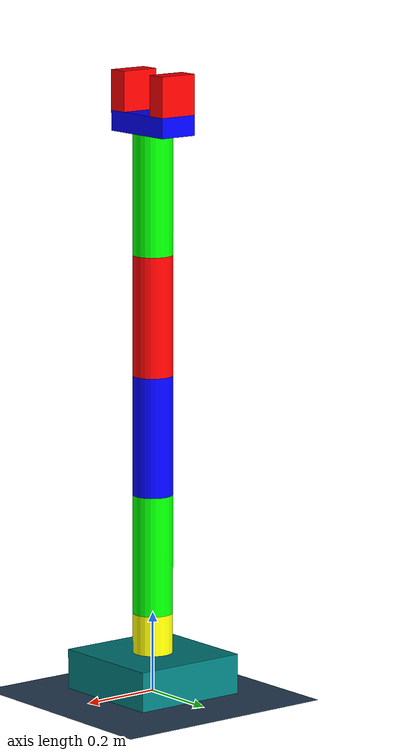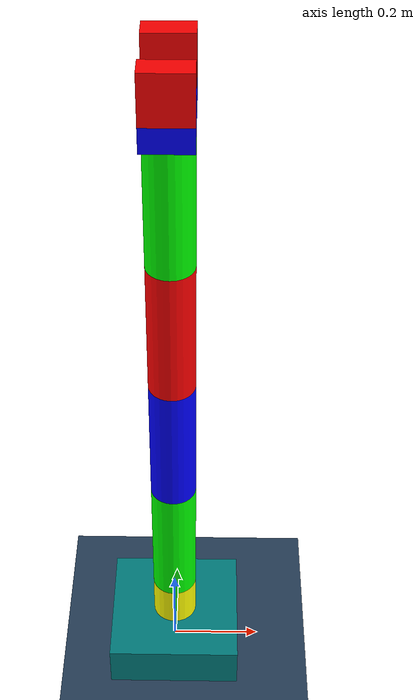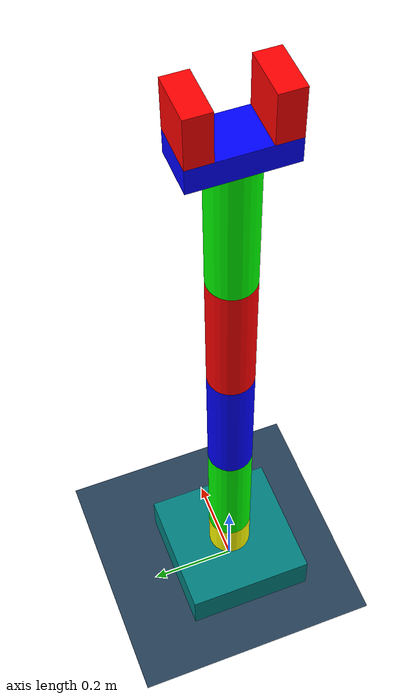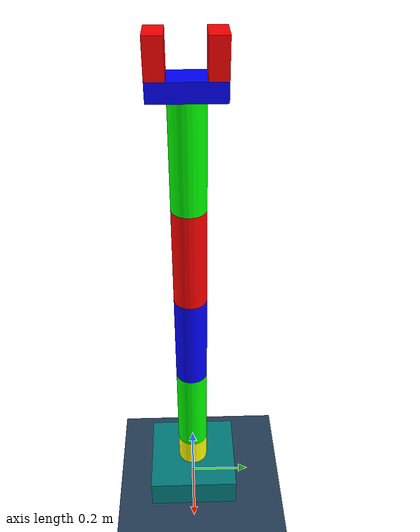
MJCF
<mujoco model="simple_robot">
  <!-- 设置角度单位为弧度 -->
  <compiler angle="radian"/>
  <asset>
    <!-- 天空纹理 -->
    <texture type="skybox" builtin="gradient" rgb1="0.3 0.5 0.7" rgb2="0 0 0" width="512" height="3072"/>
    <!-- 地面纹理及材质 -->
    <texture type="2d" name="groundplane" builtin="checker" mark="edge" rgb1="0.2 0.3 0.4" rgb2="0.1 0.2 0.3" markrgb="0.8 0.8 0.8" width="300" height="300"/>
    <material name="groundplane" texture="groundplane" texuniform="true" texrepeat="5 5" reflectance="0.2"/>
  </asset>
  <worldbody>
    <!-- 灯光 -->
    <light pos="0 0 1.5" dir="0 0 -1" type="directional"/>
    <!-- 地面 -->
    <geom name="floor" size="0 0 0.05" type="plane" material="groundplane"/>

    <!-- 底座 -->
    <body name="base_link" pos="0 0 0.05">
      <geom type="box" size="0.15 0.15 0.05" rgba="0 0.5 0.5 1"/>
      <!-- link1 -->
      <body name="link1" pos="0 0 0.1">
        <joint name="joint1" pos="0 0 0" axis="0 0 1" range="-3.14 3.14"/>
        <geom type="cylinder" size="0.05 0.05" rgba="1 1 0 1"/>
        <!-- link2 -->
        <body name="link2" pos="0 0 0.2">
          <joint name="joint2" pos="0 0 -0.15" axis="1 0 0" range="-3.14 3.14"/>
          <geom type="cylinder" size="0.05 0.15" rgba="0 1 0 1"/>
          <!-- link3 -->
          <body name="link3" pos="0 0 0.3">
            <joint name="joint3" pos="0 0 -0.15" axis="1 0 0" range="-3.14 3.14"/>
            <geom type="cylinder" size="0.05 0.15" rgba="0 0 1 1"/>
            <!-- link4 -->
            <body name="link4" pos="0 0 0.3">
              <joint name="joint4" pos="0 0 -0.15" axis="1 0 0" range="-3.14 3.14"/>
              <geom type="cylinder" size="0.05 0.15" rgba="1 0 0 1"/>
              <!-- link5 -->
              <body name="link5" pos="0 0 0.3">
                <joint name="joint5" pos="0 0 -0.15" axis="1 0 0" range="-3.14 3.14"/>
                <geom type="cylinder" size="0.05 0.15" rgba="0 1 0 1"/>
                <!-- gripper_base_link -->
                <body name="gripper_base_link" pos="0 0 0.175">
                  <joint name="gripper_base_joint" pos="0 0 0" axis="0 0 1" range="-3.14 3.14"/>
                  <geom type="box" size="0.05 0.1 0.025" rgba="0 0 1 1"/>
                  <!-- hand_right_link -->
                  <body name="hand_right_link" pos="0 -0.075 0.075">
                    <joint name="hand_right_joint" type="slide" pos="0 0 0" axis="0 1 0" range="0 0.05"/>
                    <geom type="box" size="0.05 0.025 0.05" rgba="1 0 0 1"/>
                  </body>
                  <!-- hand_left_link -->
                  <body name="hand_left_link" pos="0 0.075 0.075">
                    <joint name="hand_left_joint" type="slide" pos="0 0 0" axis="0 -1 0" range="0 0.05"/>
                    <geom type="box" size="0.05 0.025 0.05" rgba="1 0 0 1"/>
                  </body>
                </body>
              </body>
            </body>
          </body>
        </body>
      </body>
    </body>
  </worldbody>
</mujoco>
